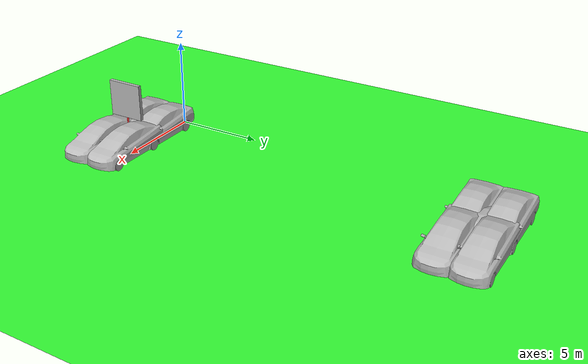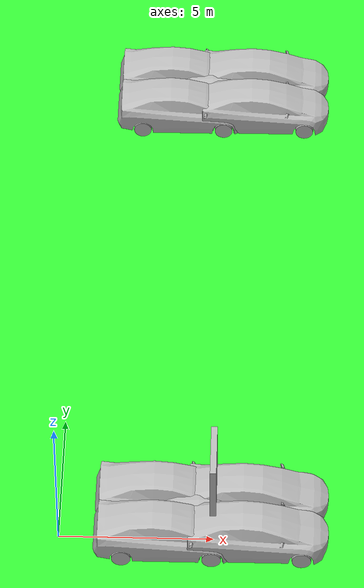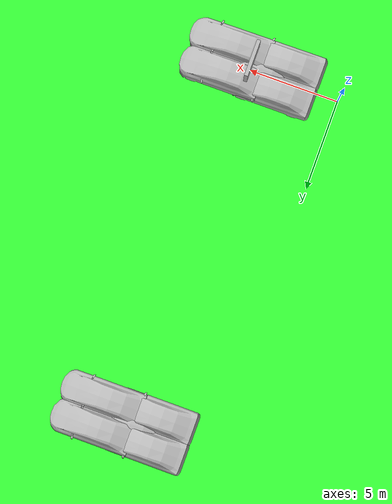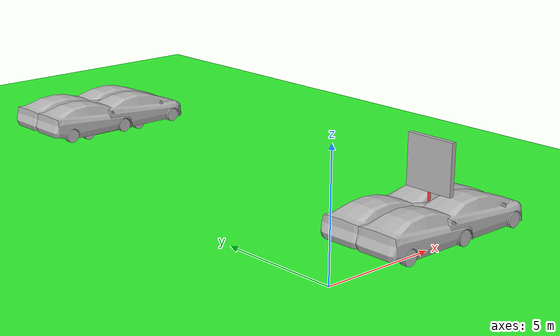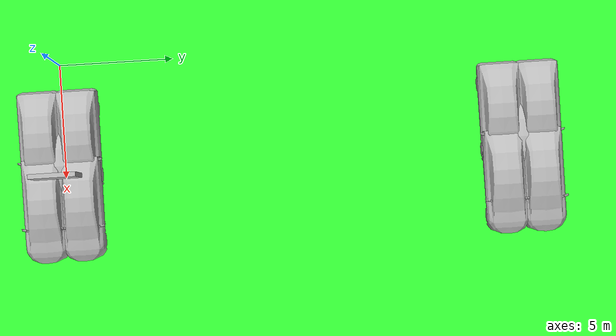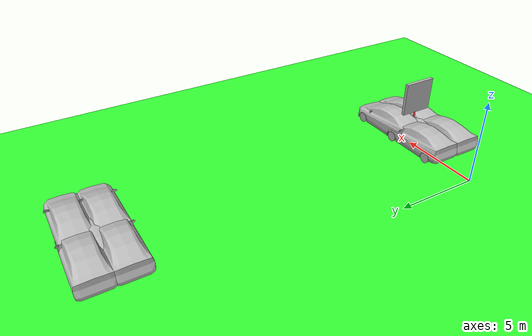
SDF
<?xml version="1.0" encoding="UTF-8"?>
<sdf version="1.9">
  <world name="car_track">
    <physics type="ode">
      <max_step_size>0.001</max_step_size>
      <real_time_factor>1.0</real_time_factor>
      <real_time_update_rate>250</real_time_update_rate>
    </physics>
    <plugin name="gz::sim::systems::Physics" filename="gz-sim-physics-system"/>
    <plugin name="gz::sim::systems::UserCommands" filename="gz-sim-user-commands-system"/>
    <plugin name="gz::sim::systems::SceneBroadcaster" filename="gz-sim-scene-broadcaster-system"/>
    <plugin name="gz::sim::systems::Contact" filename="gz-sim-contact-system"/>
    <plugin name="gz::sim::systems::Imu" filename="gz-sim-imu-system"/>
    <plugin name="gz::sim::systems::AirPressure" filename="gz-sim-air-pressure-system"/>
    <plugin name="gz::sim::systems::AirSpeed" filename="gz-sim-air-speed-system"/>
    <plugin name="gz::sim::systems::ApplyLinkWrench" filename="gz-sim-apply-link-wrench-system"/>
    <plugin name="gz::sim::systems::NavSat" filename="gz-sim-navsat-system"/>
    <plugin name="gz::sim::systems::Sensors" filename="gz-sim-sensors-system">
      <render_engine>ogre2</render_engine>
    </plugin>
    <gui fullscreen="false">
      <!-- 3D scene -->
      <plugin filename="MinimalScene" name="3D View">
        <gz-gui>
          <title>3D View</title>
          <property type="bool" key="showTitleBar">false</property>
          <property type="string" key="state">docked</property>
        </gz-gui>
        <engine>ogre2</engine>
        <scene>scene</scene>
        <ambient_light>0.4 0.4 0.4</ambient_light>
        <background_color>0.8 0.8 0.8</background_color>
        <camera_pose>-6 0 6 0 0.5 0</camera_pose>
        <camera_clip>
          <near>0.25</near>
          <far>25000</far>
        </camera_clip>
      </plugin>
      <!-- Plugins that add functionality to the scene -->
      <plugin filename="EntityContextMenuPlugin" name="Entity context menu">
        <gz-gui>
          <property key="state" type="string">floating</property>
          <property key="width" type="double">5</property>
          <property key="height" type="double">5</property>
          <property key="showTitleBar" type="bool">false</property>
        </gz-gui>
      </plugin>
      <plugin filename="GzSceneManager" name="Scene Manager">
        <gz-gui>
          <property key="resizable" type="bool">false</property>
          <property key="width" type="double">5</property>
          <property key="height" type="double">5</property>
          <property key="state" type="string">floating</property>
          <property key="showTitleBar" type="bool">false</property>
        </gz-gui>
      </plugin>
      <plugin filename="InteractiveViewControl" name="Interactive view control">
        <gz-gui>
          <property key="resizable" type="bool">false</property>
          <property key="width" type="double">5</property>
          <property key="height" type="double">5</property>
          <property key="state" type="string">floating</property>
          <property key="showTitleBar" type="bool">false</property>
        </gz-gui>
      </plugin>
      <plugin filename="CameraTracking" name="Camera Tracking">
        <gz-gui>
          <property key="resizable" type="bool">false</property>
          <property key="width" type="double">5</property>
          <property key="height" type="double">5</property>
          <property key="state" type="string">floating</property>
          <property key="showTitleBar" type="bool">false</property>
        </gz-gui>
      </plugin>
      <plugin filename="MarkerManager" name="Marker manager">
        <gz-gui>
          <property key="resizable" type="bool">false</property>
          <property key="width" type="double">5</property>
          <property key="height" type="double">5</property>
          <property key="state" type="string">floating</property>
          <property key="showTitleBar" type="bool">false</property>
        </gz-gui>
      </plugin>
      <plugin filename="SelectEntities" name="Select Entities">
        <gz-gui>
          <anchors target="Select entities">
            <line own="right" target="right"/>
            <line own="top" target="top"/>
          </anchors>
          <property key="resizable" type="bool">false</property>
          <property key="width" type="double">5</property>
          <property key="height" type="double">5</property>
          <property key="state" type="string">floating</property>
          <property key="showTitleBar" type="bool">false</property>
        </gz-gui>
      </plugin>
      <plugin filename="VisualizationCapabilities" name="Visualization Capabilities">
        <gz-gui>
          <property key="resizable" type="bool">false</property>
          <property key="width" type="double">5</property>
          <property key="height" type="double">5</property>
          <property key="state" type="string">floating</property>
          <property key="showTitleBar" type="bool">false</property>
        </gz-gui>
      </plugin>
      <plugin filename="Spawn" name="Spawn Entities">
        <gz-gui>
          <anchors target="Select entities">
            <line own="right" target="right"/>
            <line own="top" target="top"/>
          </anchors>
          <property key="resizable" type="bool">false</property>
          <property key="width" type="double">5</property>
          <property key="height" type="double">5</property>
          <property key="state" type="string">floating</property>
          <property key="showTitleBar" type="bool">false</property>
        </gz-gui>
      </plugin>
      <plugin name="World control" filename="WorldControl">
        <gz-gui>
          <title>World control</title>
          <property type="bool" key="showTitleBar">0</property>
          <property type="bool" key="resizable">0</property>
          <property type="double" key="height">72</property>
          <property type="double" key="width">121</property>
          <property type="double" key="z">1</property>
          <property type="string" key="state">floating</property>
          <anchors target="3D View">
            <line own="left" target="left"/>
            <line own="bottom" target="bottom"/>
          </anchors>
        </gz-gui>
        <play_pause>1</play_pause>
        <step>1</step>
        <start_paused>1</start_paused>
      </plugin>
      <plugin name="World stats" filename="WorldStats">
        <gz-gui>
          <title>World stats</title>
          <property type="bool" key="showTitleBar">0</property>
          <property type="bool" key="resizable">0</property>
          <property type="double" key="height">110</property>
          <property type="double" key="width">290</property>
          <property type="double" key="z">1</property>
          <property type="string" key="state">floating</property>
          <anchors target="3D View">
            <line own="right" target="right"/>
            <line own="bottom" target="bottom"/>
          </anchors>
        </gz-gui>
        <sim_time>1</sim_time>
        <real_time>1</real_time>
        <real_time_factor>1</real_time_factor>
        <iterations>1</iterations>
      </plugin>
      <plugin name="Entity tree" filename="EntityTree"/>
    </gui>
    <gravity>0 0 -9.8</gravity>
    <magnetic_field>6e-06 2.3e-05 -4.2e-05</magnetic_field>
    <atmosphere type="adiabatic"/>
    <scene>
      <grid>false</grid>
      <ambient>0.4 0.4 0.4 1</ambient>
      <background>0.7 0.7 0.7 1</background>
      <shadows>true</shadows>
    </scene>
    <model name="ground_plane">
      <static>true</static>
      <link name="link">
        <collision name="collision">
          <geometry>
            <plane>
              <normal>0 0 1</normal>
              <size>100000 100000</size>
            </plane>
          </geometry>
          <surface>
            <friction>
              <ode/>
            </friction>
            <bounce/>
            <contact/>
          </surface>
        </collision>
        <visual name="visual">
          <geometry>
            <plane>
              <normal>0 0 1</normal>
              <size>100000 100000</size>
            </plane>
          </geometry>
          <material>
            <ambient>0.2 1 0.2 1</ambient>
            <diffuse>0.2 1 0.2 1</diffuse>
            <specular>0.1 0.1 0.1 1</specular>
          </material>
        </visual>
        <pose>0 0 0 0 -0 0</pose>
        <inertial>
          <pose>0 0 0 0 -0 0</pose>
          <mass>1</mass>
          <inertia>
            <ixx>1</ixx>
            <ixy>0</ixy>
            <ixz>0</ixz>
            <iyy>1</iyy>
            <iyz>0</iyz>
            <izz>1</izz>
          </inertia>
        </inertial>
        <enable_wind>false</enable_wind>
      </link>
      <pose>0 0 0 0 -0 0</pose>
      <self_collide>false</self_collide>
    </model>
    <light name="sunUTC" type="directional">
      <pose>0 0 500 0 -0 0</pose>
      <cast_shadows>true</cast_shadows>
      <intensity>1</intensity>
      <direction>0.001 0.625 -0.78</direction>
      <diffuse>0.904 0.904 0.904 1</diffuse>
      <specular>0.271 0.271 0.271 1</specular>
      <attenuation>
        <range>2000</range>
        <linear>0</linear>
        <constant>1</constant>
        <quadratic>0</quadratic>
      </attenuation>
      <spot>
        <inner_angle>0</inner_angle>
        <outer_angle>0</outer_angle>
        <falloff>0</falloff>
      </spot>
    </light>
    <spherical_coordinates>
      <surface_model>EARTH_WGS84</surface_model>
      <world_frame_orientation>ENU</world_frame_orientation>
      <latitude_deg>47.397971057728974</latitude_deg>
      <longitude_deg> 8.546163739800146</longitude_deg>
      <elevation>0</elevation>
    </spherical_coordinates>
    <model name="prius_hybridx_apriltag">
	<pose>5 0 0.35 0 0 1.57</pose>
	<include merge="true">
		<uri>model://prius_hybridx_apriltag</uri>
	</include>
	<plugin
		filename="gz-sim-ackermann-steering-system"
		name="gz::sim::systems::AckermannSteering">
		<left_joint>front_left_wheel_joint</left_joint>
		<left_joint>rear_left_wheel_joint</left_joint>
		<right_joint>front_right_wheel_joint</right_joint>
		<right_joint>rear_right_wheel_joint</right_joint>
		<left_steering_joint>front_left_wheel_steering_joint</left_steering_joint>
		<right_steering_joint>front_right_wheel_steering_joint</right_steering_joint>
		<kingpin_width>1.52</kingpin_width>
		<steering_limit>0.4</steering_limit>
		<wheel_base>2.86</wheel_base>
		<wheel_separation>1.52</wheel_separation>
		<wheel_radius>0.31265</wheel_radius>
		<min_velocity>-10.0</min_velocity>
		<max_velocity>10.0</max_velocity>
		<min_acceleration>-10</min_acceleration>
		<max_acceleration>10</max_acceleration>
		<topic>/cmd_vel</topic>
	</plugin>

    </model>

    <model name="prius_hybridx">
	<pose>5 20 0.35 0 0 1.57</pose>
	<include merge="true">
		<uri>model://prius_hybridx</uri>
	</include>
	<plugin
		filename="gz-sim-ackermann-steering-system"
		name="gz::sim::systems::AckermannSteering">
		<left_joint>front_left_wheel_joint</left_joint>
		<left_joint>rear_left_wheel_joint</left_joint>
		<right_joint>front_right_wheel_joint</right_joint>
		<right_joint>rear_right_wheel_joint</right_joint>
		<left_steering_joint>front_left_wheel_steering_joint</left_steering_joint>
		<right_steering_joint>front_right_wheel_steering_joint</right_steering_joint>
		<kingpin_width>1.52</kingpin_width>
		<steering_limit>0.4</steering_limit>
		<wheel_base>2.86</wheel_base>
		<wheel_separation>1.52</wheel_separation>
		<wheel_radius>0.31265</wheel_radius>
		<min_velocity>-10.0</min_velocity>
		<max_velocity>10.0</max_velocity>
		<min_acceleration>-10</min_acceleration>
		<max_acceleration>10</max_acceleration>
		<topic>/cmd_vel</topic>
	</plugin>

    </model>

  </world>
</sdf>

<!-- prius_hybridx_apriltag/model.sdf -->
<sdf version="1.8">
  <model name="prius_hybridx_apriltag">
    <pose>0 0 0.03 0 0 0</pose>

    <link name="chassis">
      <inertial>
        <mass>1326.0</mass>
        <pose>0 -0.266 0.48 0 0 0</pose>
        <inertia>
          <ixx>2581.13354740</ixx>
          <ixy>0.0</ixy>
          <iyy>591.30846112</iyy>
          <ixz>0.0</ixz>
          <iyz>0.0</iyz>
          <izz>2681.95008628</izz>
        </inertia>
      </inertial>

      <visual name="chassis_visual">
        <geometry>
          <mesh>
            <uri>model://prius_hybrid/meshes/Hybrid.obj</uri>
            <scale>0.01 0.01 0.01</scale>
            <submesh>
              <name>Hybrid</name>
              <center>false</center>
            </submesh>
          </mesh>
        </geometry>
      </visual>

      <visual name="interior_visual">
        <geometry>
          <mesh>
            <uri>model://prius_hybrid/meshes/Hybrid.obj</uri>
            <scale>0.01 0.01 0.01</scale>
            <submesh>
              <name>Hybrid_Interior</name>
              <center>false</center>
            </submesh>
          </mesh>
        </geometry>
      </visual>

      <visual name="windows_visual">
        <geometry>
          <mesh>
            <uri>model://prius_hybrid/meshes/Hybrid.obj</uri>
            <scale>0.01 0.01 0.01</scale>
            <submesh>
              <name>Hybrid_Windows</name>
              <center>false</center>
            </submesh>
          </mesh>
        </geometry>
      </visual>

      <collision name="chassis">
        <pose>0.0 0.05 0.625 0 0 0</pose>
        <geometry>
          <box>
            <size>1.7526 2.1 0.95</size>
          </box>
        </geometry>
      </collision>

      <collision name="front_bumper">
        <pose>0.0 -2.0 0.458488 0.0 0 0</pose>
        <geometry>
          <box>
            <size>1.337282 0.48 0.566691</size>
          </box>
        </geometry>
      </collision>

      <collision name="hood">
        <pose>0.0 -1.900842 0.676305 0.341247 0 0</pose>
        <geometry>
          <box>
            <size>1.597968 0.493107 0.265468</size>
          </box>
        </geometry>
      </collision>

      <collision name="windshield">
        <pose>0.0 -0.875105 1.032268 0.335476 0 0</pose>
        <geometry>
          <box>
            <size>1.168381 1.654253 0.272347</size>
          </box>
        </geometry>
      </collision>

      <collision name="top_front">
        <pose>0.0 0.161236 1.386042 0.135030 0 0</pose>
        <geometry>
          <box>
            <size>1.279154 0.625988 0.171868</size>
          </box>
        </geometry>
      </collision>

      <collision name="top_rear">
        <pose>0.0 0.817696 1.360069 -0.068997 0 0</pose>
        <geometry>
          <box>
            <size>1.285130 0.771189 0.226557</size>
          </box>
        </geometry>
      </collision>

      <collision name="rear_window">
        <pose>0.0 1.640531 1.175126 -0.262017 0 0</pose>
        <geometry>
          <box>
            <size>1.267845 1.116344 0.244286</size>
          </box>
        </geometry>
      </collision>

      <collision name="trunk">
        <pose>0.0 1.637059 0.888180 0.0 0 0</pose>
        <geometry>
          <box>
            <size>1.788064 1.138988 0.482746</size>
          </box>
        </geometry>
      </collision>

      <collision name="back_bumper">
        <pose>0.0 2.054454 0.577870 0.0 0 0</pose>
        <geometry>
          <box>
            <size>1.781650 0.512093 0.581427</size>
          </box>
        </geometry>
      </collision>

      <sensor name="imu_sensor" type="imu">
        <always_on>1</always_on>
        <update_rate>250</update_rate>
        <imu>
          <angular_velocity>
            <x>
              <noise type="gaussian">
                <mean>0</mean>
                <stddev>0.00018665</stddev>
                <dynamic_bias_stddev>3.8785e-05</dynamic_bias_stddev>
                <dynamic_bias_correlation_time>1000</dynamic_bias_correlation_time>
              </noise>
            </x>
            <y>
              <noise type="gaussian">
                <mean>0</mean>
                <stddev>0.00018665</stddev>
                <dynamic_bias_stddev>3.8785e-05</dynamic_bias_stddev>
                <dynamic_bias_correlation_time>1000</dynamic_bias_correlation_time>
              </noise>
            </y>
            <z>
              <noise type="gaussian">
                <mean>0</mean>
                <stddev>0.00018665</stddev>
                <dynamic_bias_stddev>3.8785e-05</dynamic_bias_stddev>
                <dynamic_bias_correlation_time>1000</dynamic_bias_correlation_time>
              </noise>
            </z>
          </angular_velocity>
          <linear_acceleration>
            <x>
              <noise type="gaussian">
                <mean>0</mean>
                <stddev>0.00186</stddev>
                <dynamic_bias_stddev>0.006</dynamic_bias_stddev>
                <dynamic_bias_correlation_time>300</dynamic_bias_correlation_time>
              </noise>
            </x>
            <y>
              <noise type="gaussian">
                <mean>0</mean>
                <stddev>0.00186</stddev>
                <dynamic_bias_stddev>0.006</dynamic_bias_stddev>
                <dynamic_bias_correlation_time>300</dynamic_bias_correlation_time>
              </noise>
            </y>
            <z>
              <noise type="gaussian">
                <mean>0</mean>
                <stddev>0.00186</stddev>
                <dynamic_bias_stddev>0.006</dynamic_bias_stddev>
                <dynamic_bias_correlation_time>300</dynamic_bias_correlation_time>
              </noise>
            </z>
          </linear_acceleration>
        </imu>
      </sensor>

      <sensor name="navsat_sensor" type="navsat">
        <always_on>1</always_on>
        <update_rate>30</update_rate>
      </sensor>
    </link>

    <link name="front_left_wheel">
      <pose>0.76 -1.41 0.3 0 0 0</pose>
      <inertial>
        <mass>11</mass>
        <inertia>
          <ixx>0.58631238</ixx>
          <ixy>0.0</ixy>
          <iyy>0.33552910</iyy>
          <ixz>0.0</ixz>
          <iyz>0.0</iyz>
          <izz>0.33552910</izz>
        </inertia>
      </inertial>

      <visual name="visual">
        <pose>0.04 0.0 0.0 0 0 0</pose>
        <geometry>
          <mesh>
            <uri>model://prius_hybrid/meshes/Hybrid.obj</uri>
            <scale>0.01 0.01 0.01</scale>
            <submesh>
              <name>Wheel_Front_Left_</name>
              <center>true</center>
            </submesh>
          </mesh>
        </geometry>
      </visual>

      <collision name="collision">
        <pose>0.0 0.0 0.0 0 1.5707963267948966 0</pose>
        <geometry>
          <sphere>
            <radius>0.31265</radius>
          </sphere>
        </geometry>
        <surface>
          <friction>
            <ode>
              <mu>0.9</mu>
              <mu2>0.9</mu2>
              <slip1>0.0</slip1>
              <slip2>0.0</slip2>
            </ode>
          </friction>
          <contact>
            <ode>
              <min_depth>0.001</min_depth>
              <kp>1e9</kp>
            </ode>
          </contact>
        </surface>

      </collision>
    </link>

    <!-- 在车顶添加 apriltag_sign 模型 -->
    <include>
      <uri>model://apriltag_sign</uri>  <!-- 使用 Gazebo 自带的 apriltag_sign 模型 -->
      <pose>0 0 1.4 0 0 -1.57</pose>   <!-- 将模型置于车顶-->
      <name>apriltag_sign</name>        <!-- 模型的名称 -->
    </include>

     <!-- 刚性关节：将 apriltag 模型连接到圆柱体顶部 -->
    <joint name="sign_joint" type="fixed">
      <parent>chassis</parent>  <!-- 父 Link：圆柱体 -->
      <child>apriltag_sign::sign</child>  <!-- 子 Link：apriltag 的默认 Link -->
      <pose>0 0 1.4 0 0 -1.57</pose>  <!-- 关节位置和姿态 -->
    </joint>

    <link name="front_left_wheel_steering">
      <pose relative_to="front_left_wheel_joint">0 0 0 0 0 0</pose>
      <inertial>
        <mass>1.0</mass>
        <inertia>
          <ixx>0.14583300</ixx>
          <ixy>0</ixy>
          <ixz>0</ixz>
          <iyy>0.14583300</iyy>
          <iyz>0</iyz>
          <izz>0.12500000</izz>
        </inertia>
      </inertial>
    </link>

    <joint name="front_left_wheel_joint" type="revolute" >
      <pose relative_to="front_left_wheel">0 0 0 0 0 0</pose>
      <child>front_left_wheel</child>
      <parent>front_left_wheel_steering</parent>
      <axis>
        <xyz>1 0 0</xyz>
        <limit>
          <lower>-1.79769e+308</lower>
          <upper>1.79769e+308</upper>
        </limit>
        <dynamics>
          <spring_reference>0</spring_reference>
          <spring_stiffness>0</spring_stiffness>
        </dynamics>
      </axis>
    </joint>

    <joint name="front_left_wheel_steering_joint" type="revolute">
      <pose relative_to="front_left_wheel_steering">0 0 0 0 0 0</pose>
      <parent>chassis</parent>
      <child>front_left_wheel_steering</child>
      <axis>
        <xyz>0 0 1</xyz>
        <limit>
          <lower>-0.6</lower>
          <upper>0.6</upper>
          <velocity>1.0</velocity>
          <effort>25</effort>
        </limit>
      </axis>
    </joint>

    <link name="front_right_wheel">
      <pose>-0.76 -1.41 0.3 0 0 0</pose>
      <inertial>
        <mass>11</mass>
        <inertia>
          <ixx>0.58631238</ixx>
          <ixy>0.0</ixy>
          <iyy>0.33552910</iyy>
          <ixz>0.0</ixz>
          <iyz>0.0</iyz>
          <izz>0.33552910</izz>
        </inertia>
      </inertial>
      <visual name="visual">
        <pose>-0.04 0.0 0.0 0 0 0</pose>
        <pose>0 0 0.0 0 0 0</pose>
        <geometry>
          <mesh>
            <uri>model://prius_hybrid/meshes/Hybrid.obj</uri>
            <scale>0.01 0.01 0.01</scale>
            <submesh>
              <name>Wheel_Front_Right</name>
              <center>true</center>
            </submesh>
          </mesh>
        </geometry>
      </visual>

      <collision name="collision">
        <pose>0.0 0.0 0.0 0 1.5707963267948966 0</pose>
        <geometry>
          <sphere>
            <radius>0.31265</radius>
          </sphere>
        </geometry>
        <surface>
          <friction>
            <ode>
              <mu>0.9</mu>
              <mu2>0.9</mu2>
              <slip1>0.0</slip1>
              <slip2>0.0</slip2>
            </ode>
          </friction>
          <contact>
            <ode>
              <min_depth>0.001</min_depth>
              <kp>1e9</kp>
            </ode>
          </contact>
        </surface>

      </collision>
    </link>

    <link name="front_right_wheel_steering">
      <pose relative_to="front_right_wheel_joint">0 0 0 0 0 0</pose>
      <inertial>
        <mass>1.0</mass>
        <inertia>
          <ixx>0.14583300</ixx>
          <ixy>0</ixy>
          <ixz>0</ixz>
          <iyy>0.14583300</iyy>
          <iyz>0</iyz>
          <izz>0.12500000</izz>
        </inertia>
      </inertial>
    </link>

    <joint name="front_right_wheel_joint" type="revolute" >
      <pose relative_to="front_right_wheel">0 0 0 0 0 0</pose>
      <child>front_right_wheel</child>
      <parent>front_right_wheel_steering</parent>
      <axis>
        <xyz>1 0 0</xyz>
        <limit>
          <lower>-1.79769e+308</lower>
          <upper>1.79769e+308</upper>
        </limit>
        <dynamics>
          <spring_reference>0</spring_reference>
          <spring_stiffness>0</spring_stiffness>
        </dynamics>
      </axis>
    </joint>

    <joint name="front_right_wheel_steering_joint" type="revolute">
      <pose relative_to="front_right_wheel_steering">0 0 0 0 0 0</pose>
      <parent>chassis</parent>
      <child>front_right_wheel_steering</child>
      <axis>
        <xyz>0 0 1</xyz>
        <limit>
          <lower>-0.6</lower>
          <upper>0.6</upper>
          <velocity>1.0</velocity>
          <effort>25</effort>
        </limit>
      </axis>
    </joint>

    <link name="rear_left_wheel">
      <pose>0.786 1.45 0.3 0 0 0</pose>
      <inertial>
        <mass>11</mass>
        <inertia>
          <ixx>0.58631238</ixx>
          <ixy>0.0</ixy>
          <iyy>0.33552910</iyy>
          <ixz>0.0</ixz>
          <iyz>0.0</iyz>
          <izz>0.33552910</izz>
        </inertia>
      </inertial>

      <visual name="visual">
        <pose>0.04 0.0 0.0 0 0 0</pose>
        <geometry>
          <mesh>
            <uri>model://prius_hybrid/meshes/Hybrid.obj</uri>
            <scale>0.01 0.01 0.01</scale>
            <submesh>
              <name>Wheel_Front_Left_</name>
              <center>true</center>
            </submesh>
          </mesh>
        </geometry>
      </visual>

      <collision name="collision">
        <pose>0.0 0.0 0.0 0 1.5707963267948966 0</pose>
        <geometry>
          <sphere>
            <radius>0.31265</radius>
          </sphere>
        </geometry>
        <surface>
          <friction>
            <ode>
              <mu>1.1</mu>
              <mu2>1.1</mu2>
              <slip1>0.0</slip1>
              <slip2>0.0</slip2>
            </ode>
          </friction>
          <contact>
            <ode>
              <min_depth>0.001</min_depth>
              <kp>1e9</kp>
            </ode>
          </contact>
        </surface>

      </collision>
    </link>

    <joint name="rear_left_wheel_joint" type="revolute">
      <parent>chassis</parent>
      <child>rear_left_wheel</child>
      <pose relative_to="rear_left_wheel">0 0 0 0 0 0</pose>
      <axis>
        <xyz>1 0 0</xyz>
        <limit>
          <lower>-1.79769e+308</lower>
          <upper>1.79769e+308</upper>
        </limit>
        <dynamics>
          <spring_reference>0</spring_reference>
          <spring_stiffness>0</spring_stiffness>
        </dynamics>
      </axis>
    </joint>

    <link name="rear_right_wheel">
      <pose>-0.786 1.45 0.3 0 0 0</pose>
      <inertial>
        <mass>11</mass>
        <inertia>
          <ixx>0.58631238</ixx>
          <ixy>0.0</ixy>
          <iyy>0.33552910</iyy>
          <ixz>0.0</ixz>
          <iyz>0.0</iyz>
          <izz>0.33552910</izz>
        </inertia>
      </inertial>
      <visual name="visual">
        <pose>-0.04 0.0 0.0 0 0 0</pose>
        <geometry>
          <mesh>
            <uri>model://prius_hybrid/meshes/Hybrid.obj</uri>
            <scale>0.01 0.01 0.01</scale>
            <submesh>
              <name>Wheel_Front_Right</name>
              <center>true</center>
            </submesh>
          </mesh>
        </geometry>
      </visual>

      <collision name="collision">
        <pose>0.0 0.0 0.0 0 1.5707963267948966 0</pose>
        <geometry>
          <sphere>
            <radius>0.31265</radius>
          </sphere>
        </geometry>
        <surface>
          <friction>
            <ode>
              <mu>1.1</mu>
              <mu2>1.1</mu2>
              <slip1>0.0</slip1>
              <slip2>0.0</slip2>
            </ode>
          </friction>
          <contact>
            <ode>
              <min_depth>0.001</min_depth>
              <kp>1e9</kp>
            </ode>
          </contact>
        </surface>
      </collision>
    </link>

    <joint name="rear_right_wheel_joint" type="revolute">
      <parent>chassis</parent>
      <child>rear_right_wheel</child>
      <pose relative_to="rear_right_wheel">0 0 0 0 0 0</pose>
      <axis>
        <xyz>1 0 0</xyz>
        <limit>
          <lower>-1.79769e+308</lower>
          <upper>1.79769e+308</upper>
        </limit>
        <dynamics>
          <spring_reference>0</spring_reference>
          <spring_stiffness>0</spring_stiffness>
        </dynamics>
      </axis>
    </joint>

  </model>

</sdf>

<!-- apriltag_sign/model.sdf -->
<sdf version='1.6'>
  <model name='apriltag_sign'>
    <link name='sign'>
      <pose frame=''>0 0 0.25 0 0 0</pose>
      <visual name="visual">
        <geometry>
          <cylinder>
            <radius>0.05</radius>  <!-- 半径 = 直径 / 2 = 0.1 / 2 = 0.05 -->
            <length>0.5</length>   <!-- 高度 -->
          </cylinder>
        </geometry>
        <!-- 定义颜色为银色 -->
        <material>
          <ambient>1 0.2 0.2 1</ambient>  <!-- 环境光颜色 -->
          <diffuse>1 0.2 0.2 1</diffuse>  <!-- 漫反射颜色 -->
          <specular>0.5 0.5 0.5 1</specular> <!-- 镜面反射颜色 -->
        </material>
      </visual>
     </link>
      <!-- 在圆柱体顶部添加apriltag模型 -->
     <include>
      <uri>model://apriltag</uri>  <!-- 使用 Gazebo 自带的单位模型 -->
      <pose>0 0 1.5 -1.57 0 1.57</pose>   <!-- 将apriltag放置在圆柱体顶部 -->
      <name>apritag</name>        <!-- 模型的名称 -->
    </include>

    <!-- 刚性关节：将 apriltag 模型连接到圆柱体顶部 -->
    <joint name="fixed_joint" type="fixed">
      <parent>sign</parent>  <!-- 父 Link：圆柱体 -->
      <child>apritag::main</child>  <!-- 子 Link：apriltag 的默认 Link -->
      <pose>0 0 1.5 -1.57 0 1.57</pose>  <!-- 关节位置和姿态 -->
    </joint>
    <static>1</static>
  </model>
</sdf>

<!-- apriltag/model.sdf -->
<sdf version='1.6'>
  <model name='apriltag'>
    <link name='main'>
      <pose frame=''>0 0 0 0 0 0</pose>
      <visual name="visual">
        <geometry>
            <mesh>
                <scale>1 1 1</scale>
                <uri>model://apriltag/meshes/AprilTags0.dae</uri>
            </mesh>
        </geometry>
      </visual>
     </link>
    <static>1</static>
  </model>
</sdf>

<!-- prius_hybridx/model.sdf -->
<sdf version="1.8">
  <model name="prius_hybridx">
    <pose>0 0 0.03 0 0 0</pose>

    <link name="chassis">
      <inertial>
        <mass>1326.0</mass>
        <pose>0 -0.266 0.48 0 0 0</pose>
        <inertia>
          <ixx>2581.13354740</ixx>
          <ixy>0.0</ixy>
          <iyy>591.30846112</iyy>
          <ixz>0.0</ixz>
          <iyz>0.0</iyz>
          <izz>2681.95008628</izz>
        </inertia>
      </inertial>

      <visual name="chassis_visual">
        <geometry>
          <mesh>
            <uri>model://prius_hybrid/meshes/Hybrid.obj</uri>
            <scale>0.01 0.01 0.01</scale>
            <submesh>
              <name>Hybrid</name>
              <center>false</center>
            </submesh>
          </mesh>
        </geometry>
      </visual>

      <visual name="interior_visual">
        <geometry>
          <mesh>
            <uri>model://prius_hybrid/meshes/Hybrid.obj</uri>
            <scale>0.01 0.01 0.01</scale>
            <submesh>
              <name>Hybrid_Interior</name>
              <center>false</center>
            </submesh>
          </mesh>
        </geometry>
      </visual>

      <visual name="windows_visual">
        <geometry>
          <mesh>
            <uri>model://prius_hybrid/meshes/Hybrid.obj</uri>
            <scale>0.01 0.01 0.01</scale>
            <submesh>
              <name>Hybrid_Windows</name>
              <center>false</center>
            </submesh>
          </mesh>
        </geometry>
      </visual>

      <collision name="chassis">
        <pose>0.0 0.05 0.625 0 0 0</pose>
        <geometry>
          <box>
            <size>1.7526 2.1 0.95</size>
          </box>
        </geometry>
      </collision>

      <collision name="front_bumper">
        <pose>0.0 -2.0 0.458488 0.0 0 0</pose>
        <geometry>
          <box>
            <size>1.337282 0.48 0.566691</size>
          </box>
        </geometry>
      </collision>

      <collision name="hood">
        <pose>0.0 -1.900842 0.676305 0.341247 0 0</pose>
        <geometry>
          <box>
            <size>1.597968 0.493107 0.265468</size>
          </box>
        </geometry>
      </collision>

      <collision name="windshield">
        <pose>0.0 -0.875105 1.032268 0.335476 0 0</pose>
        <geometry>
          <box>
            <size>1.168381 1.654253 0.272347</size>
          </box>
        </geometry>
      </collision>

      <collision name="top_front">
        <pose>0.0 0.161236 1.386042 0.135030 0 0</pose>
        <geometry>
          <box>
            <size>1.279154 0.625988 0.171868</size>
          </box>
        </geometry>
      </collision>

      <collision name="top_rear">
        <pose>0.0 0.817696 1.360069 -0.068997 0 0</pose>
        <geometry>
          <box>
            <size>1.285130 0.771189 0.226557</size>
          </box>
        </geometry>
      </collision>

      <collision name="rear_window">
        <pose>0.0 1.640531 1.175126 -0.262017 0 0</pose>
        <geometry>
          <box>
            <size>1.267845 1.116344 0.244286</size>
          </box>
        </geometry>
      </collision>

      <collision name="trunk">
        <pose>0.0 1.637059 0.888180 0.0 0 0</pose>
        <geometry>
          <box>
            <size>1.788064 1.138988 0.482746</size>
          </box>
        </geometry>
      </collision>

      <collision name="back_bumper">
        <pose>0.0 2.054454 0.577870 0.0 0 0</pose>
        <geometry>
          <box>
            <size>1.781650 0.512093 0.581427</size>
          </box>
        </geometry>
      </collision>
    </link>

    <link name="front_left_wheel">
      <pose>0.76 -1.41 0.3 0 0 0</pose>
      <inertial>
        <mass>11</mass>
        <inertia>
          <ixx>0.58631238</ixx>
          <ixy>0.0</ixy>
          <iyy>0.33552910</iyy>
          <ixz>0.0</ixz>
          <iyz>0.0</iyz>
          <izz>0.33552910</izz>
        </inertia>
      </inertial>

      <visual name="visual">
        <pose>0.04 0.0 0.0 0 0 0</pose>
        <geometry>
          <mesh>
            <uri>model://prius_hybrid/meshes/Hybrid.obj</uri>
            <scale>0.01 0.01 0.01</scale>
            <submesh>
              <name>Wheel_Front_Left_</name>
              <center>true</center>
            </submesh>
          </mesh>
        </geometry>
      </visual>

      <collision name="collision">
        <pose>0.0 0.0 0.0 0 1.5707963267948966 0</pose>
        <geometry>
          <sphere>
            <radius>0.31265</radius>
          </sphere>
        </geometry>
        <surface>
          <friction>
            <ode>
              <mu>0.9</mu>
              <mu2>0.9</mu2>
              <slip1>0.0</slip1>
              <slip2>0.0</slip2>
            </ode>
          </friction>
          <contact>
            <ode>
              <min_depth>0.001</min_depth>
              <kp>1e9</kp>
            </ode>
          </contact>
        </surface>
      </collision>

      <sensor name="imu_sensor" type="imu">
        <always_on>1</always_on>
        <update_rate>250</update_rate>
        <imu>
          <angular_velocity>
            <x>
              <noise type="gaussian">
                <mean>0</mean>
                <stddev>0.00018665</stddev>
                <dynamic_bias_stddev>3.8785e-05</dynamic_bias_stddev>
                <dynamic_bias_correlation_time>1000</dynamic_bias_correlation_time>
              </noise>
            </x>
            <y>
              <noise type="gaussian">
                <mean>0</mean>
                <stddev>0.00018665</stddev>
                <dynamic_bias_stddev>3.8785e-05</dynamic_bias_stddev>
                <dynamic_bias_correlation_time>1000</dynamic_bias_correlation_time>
              </noise>
            </y>
            <z>
              <noise type="gaussian">
                <mean>0</mean>
                <stddev>0.00018665</stddev>
                <dynamic_bias_stddev>3.8785e-05</dynamic_bias_stddev>
                <dynamic_bias_correlation_time>1000</dynamic_bias_correlation_time>
              </noise>
            </z>
          </angular_velocity>
          <linear_acceleration>
            <x>
              <noise type="gaussian">
                <mean>0</mean>
                <stddev>0.00186</stddev>
                <dynamic_bias_stddev>0.006</dynamic_bias_stddev>
                <dynamic_bias_correlation_time>300</dynamic_bias_correlation_time>
              </noise>
            </x>
            <y>
              <noise type="gaussian">
                <mean>0</mean>
                <stddev>0.00186</stddev>
                <dynamic_bias_stddev>0.006</dynamic_bias_stddev>
                <dynamic_bias_correlation_time>300</dynamic_bias_correlation_time>
              </noise>
            </y>
            <z>
              <noise type="gaussian">
                <mean>0</mean>
                <stddev>0.00186</stddev>
                <dynamic_bias_stddev>0.006</dynamic_bias_stddev>
                <dynamic_bias_correlation_time>300</dynamic_bias_correlation_time>
              </noise>
            </z>
          </linear_acceleration>
        </imu>
      </sensor>

      <sensor name="navsat_sensor" type="navsat">
        <always_on>1</always_on>
        <update_rate>30</update_rate>
      </sensor>
    </link>

    <link name="front_left_wheel_steering">
      <pose relative_to="front_left_wheel_joint">0 0 0 0 0 0</pose>
      <inertial>
        <mass>1.0</mass>
        <inertia>
          <ixx>0.14583300</ixx>
          <ixy>0</ixy>
          <ixz>0</ixz>
          <iyy>0.14583300</iyy>
          <iyz>0</iyz>
          <izz>0.12500000</izz>
        </inertia>
      </inertial>
    </link>

    <joint name="front_left_wheel_joint" type="revolute" >
      <pose relative_to="front_left_wheel">0 0 0 0 0 0</pose>
      <child>front_left_wheel</child>
      <parent>front_left_wheel_steering</parent>
      <axis>
        <xyz>1 0 0</xyz>
        <limit>
          <lower>-1.79769e+308</lower>
          <upper>1.79769e+308</upper>
        </limit>
        <dynamics>
          <spring_reference>0</spring_reference>
          <spring_stiffness>0</spring_stiffness>
        </dynamics>
      </axis>
    </joint>

    <joint name="front_left_wheel_steering_joint" type="revolute">
      <pose relative_to="front_left_wheel_steering">0 0 0 0 0 0</pose>
      <parent>chassis</parent>
      <child>front_left_wheel_steering</child>
      <axis>
        <xyz>0 0 1</xyz>
        <limit>
          <lower>-0.6</lower>
          <upper>0.6</upper>
          <velocity>1.0</velocity>
          <effort>25</effort>
        </limit>
      </axis>
    </joint>

    <link name="front_right_wheel">
      <pose>-0.76 -1.41 0.3 0 0 0</pose>
      <inertial>
        <mass>11</mass>
        <inertia>
          <ixx>0.58631238</ixx>
          <ixy>0.0</ixy>
          <iyy>0.33552910</iyy>
          <ixz>0.0</ixz>
          <iyz>0.0</iyz>
          <izz>0.33552910</izz>
        </inertia>
      </inertial>
      <visual name="visual">
        <pose>-0.04 0.0 0.0 0 0 0</pose>
        <pose>0 0 0.0 0 0 0</pose>
        <geometry>
          <mesh>
            <uri>model://prius_hybrid/meshes/Hybrid.obj</uri>
            <scale>0.01 0.01 0.01</scale>
            <submesh>
              <name>Wheel_Front_Right</name>
              <center>true</center>
            </submesh>
          </mesh>
        </geometry>
      </visual>

      <collision name="collision">
        <pose>0.0 0.0 0.0 0 1.5707963267948966 0</pose>
        <geometry>
          <sphere>
            <radius>0.31265</radius>
          </sphere>
        </geometry>
        <surface>
          <friction>
            <ode>
              <mu>0.9</mu>
              <mu2>0.9</mu2>
              <slip1>0.0</slip1>
              <slip2>0.0</slip2>
            </ode>
          </friction>
          <contact>
            <ode>
              <min_depth>0.001</min_depth>
              <kp>1e9</kp>
            </ode>
          </contact>
        </surface>

      </collision>
    </link>

    <link name="front_right_wheel_steering">
      <pose relative_to="front_right_wheel_joint">0 0 0 0 0 0</pose>
      <inertial>
        <mass>1.0</mass>
        <inertia>
          <ixx>0.14583300</ixx>
          <ixy>0</ixy>
          <ixz>0</ixz>
          <iyy>0.14583300</iyy>
          <iyz>0</iyz>
          <izz>0.12500000</izz>
        </inertia>
      </inertial>
    </link>

    <joint name="front_right_wheel_joint" type="revolute" >
      <pose relative_to="front_right_wheel">0 0 0 0 0 0</pose>
      <child>front_right_wheel</child>
      <parent>front_right_wheel_steering</parent>
      <axis>
        <xyz>1 0 0</xyz>
        <limit>
          <lower>-1.79769e+308</lower>
          <upper>1.79769e+308</upper>
        </limit>
        <dynamics>
          <spring_reference>0</spring_reference>
          <spring_stiffness>0</spring_stiffness>
        </dynamics>
      </axis>
    </joint>

    <joint name="front_right_wheel_steering_joint" type="revolute">
      <pose relative_to="front_right_wheel_steering">0 0 0 0 0 0</pose>
      <parent>chassis</parent>
      <child>front_right_wheel_steering</child>
      <axis>
        <xyz>0 0 1</xyz>
        <limit>
          <lower>-0.6</lower>
          <upper>0.6</upper>
          <velocity>1.0</velocity>
          <effort>25</effort>
        </limit>
      </axis>
    </joint>

    <link name="rear_left_wheel">
      <pose>0.786 1.45 0.3 0 0 0</pose>
      <inertial>
        <mass>11</mass>
        <inertia>
          <ixx>0.58631238</ixx>
          <ixy>0.0</ixy>
          <iyy>0.33552910</iyy>
          <ixz>0.0</ixz>
          <iyz>0.0</iyz>
          <izz>0.33552910</izz>
        </inertia>
      </inertial>

      <visual name="visual">
        <pose>0.04 0.0 0.0 0 0 0</pose>
        <geometry>
          <mesh>
            <uri>model://prius_hybrid/meshes/Hybrid.obj</uri>
            <scale>0.01 0.01 0.01</scale>
            <submesh>
              <name>Wheel_Front_Left_</name>
              <center>true</center>
            </submesh>
          </mesh>
        </geometry>
      </visual>

      <collision name="collision">
        <pose>0.0 0.0 0.0 0 1.5707963267948966 0</pose>
        <geometry>
          <sphere>
            <radius>0.31265</radius>
          </sphere>
        </geometry>
        <surface>
          <friction>
            <ode>
              <mu>1.1</mu>
              <mu2>1.1</mu2>
              <slip1>0.0</slip1>
              <slip2>0.0</slip2>
            </ode>
          </friction>
          <contact>
            <ode>
              <min_depth>0.001</min_depth>
              <kp>1e9</kp>
            </ode>
          </contact>
        </surface>

      </collision>
    </link>

    <joint name="rear_left_wheel_joint" type="revolute">
      <parent>chassis</parent>
      <child>rear_left_wheel</child>
      <pose relative_to="rear_left_wheel">0 0 0 0 0 0</pose>
      <axis>
        <xyz>1 0 0</xyz>
        <limit>
          <lower>-1.79769e+308</lower>
          <upper>1.79769e+308</upper>
        </limit>
        <dynamics>
          <spring_reference>0</spring_reference>
          <spring_stiffness>0</spring_stiffness>
        </dynamics>
      </axis>
    </joint>

    <link name="rear_right_wheel">
      <pose>-0.786 1.45 0.3 0 0 0</pose>
      <inertial>
        <mass>11</mass>
        <inertia>
          <ixx>0.58631238</ixx>
          <ixy>0.0</ixy>
          <iyy>0.33552910</iyy>
          <ixz>0.0</ixz>
          <iyz>0.0</iyz>
          <izz>0.33552910</izz>
        </inertia>
      </inertial>
      <visual name="visual">
        <pose>-0.04 0.0 0.0 0 0 0</pose>
        <geometry>
          <mesh>
            <uri>model://prius_hybrid/meshes/Hybrid.obj</uri>
            <scale>0.01 0.01 0.01</scale>
            <submesh>
              <name>Wheel_Front_Right</name>
              <center>true</center>
            </submesh>
          </mesh>
        </geometry>
      </visual>

      <collision name="collision">
        <pose>0.0 0.0 0.0 0 1.5707963267948966 0</pose>
        <geometry>
          <sphere>
            <radius>0.31265</radius>
          </sphere>
        </geometry>
        <surface>
          <friction>
            <ode>
              <mu>1.1</mu>
              <mu2>1.1</mu2>
              <slip1>0.0</slip1>
              <slip2>0.0</slip2>
            </ode>
          </friction>
          <contact>
            <ode>
              <min_depth>0.001</min_depth>
              <kp>1e9</kp>
            </ode>
          </contact>
        </surface>
      </collision>
    </link>

    <joint name="rear_right_wheel_joint" type="revolute">
      <parent>chassis</parent>
      <child>rear_right_wheel</child>
      <pose relative_to="rear_right_wheel">0 0 0 0 0 0</pose>
      <axis>
        <xyz>1 0 0</xyz>
        <limit>
          <lower>-1.79769e+308</lower>
          <upper>1.79769e+308</upper>
        </limit>
        <dynamics>
          <spring_reference>0</spring_reference>
          <spring_stiffness>0</spring_stiffness>
        </dynamics>
      </axis>
    </joint>

  </model>

</sdf>
